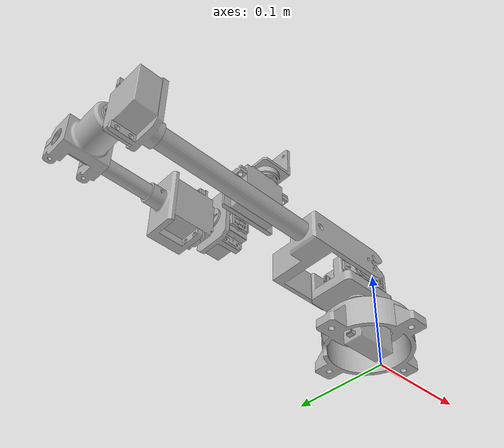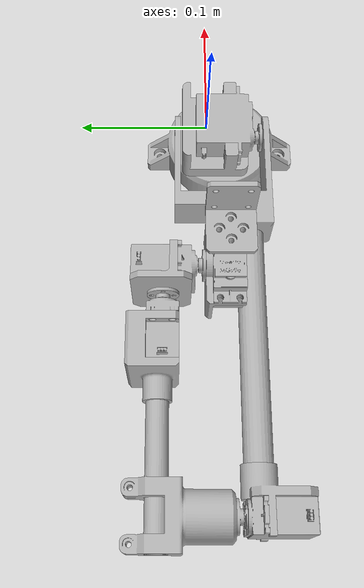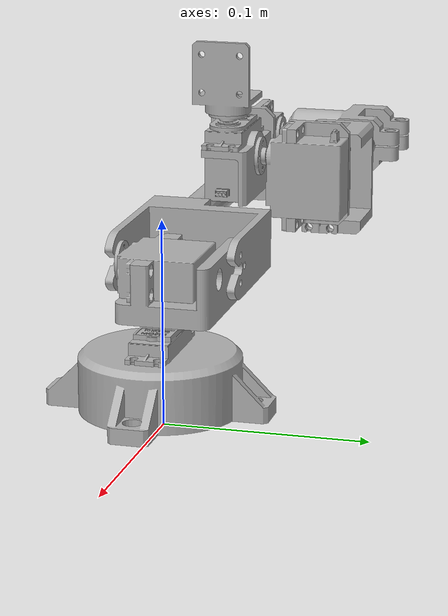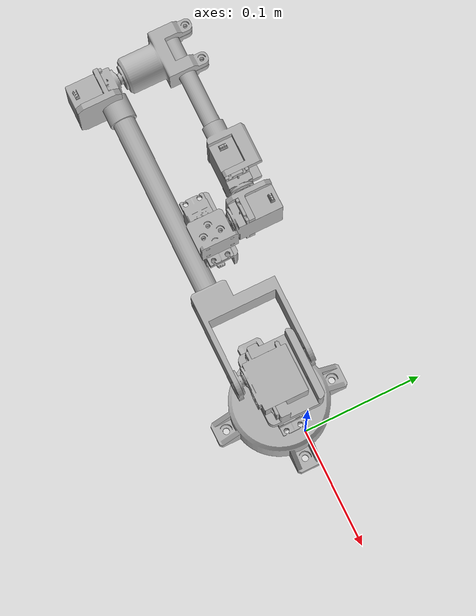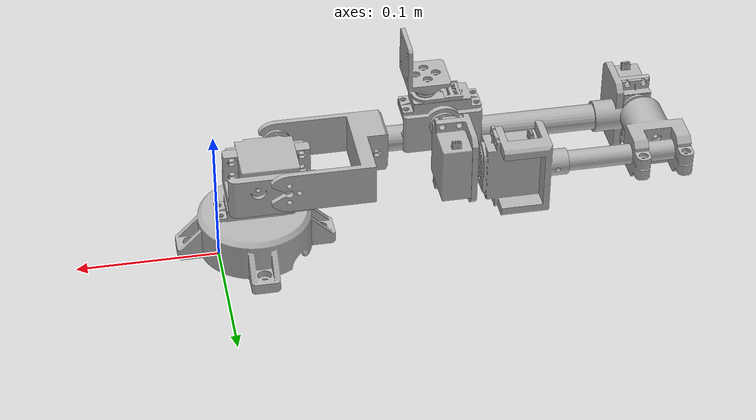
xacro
<?xml version="1.0" ?>
<robot name="PT-2" xmlns:xacro="http://www.ros.org/wiki/xacro">

<xacro:include filename="$(find PT-2_description)/urdf/materials.xacro" />
<xacro:include filename="$(find PT-2_description)/urdf/PT-2.trans" />
<xacro:include filename="$(find PT-2_description)/urdf/PT-2.gazebo" />
<link name="base_link">
  <inertial>
    <origin xyz="-0.027131778182013722 -0.009733860759561438 0.014001989342824386" rpy="0 0 0"/>
    <mass value="0.018537346732997912"/>
    <inertia ixx="1.6e-05" iyy="1.5e-05" izz="2.7e-05" ixy="-0.0" iyz="-0.0" ixz="0.0"/>
  </inertial>
  <visual>
    <origin xyz="0 0 0" rpy="0 0 0"/>
    <geometry>
      <mesh filename="package://PT-2_description/meshes/base_link.stl" scale="0.001 0.001 0.001"/>
    </geometry>
    <material name="silver"/>
  </visual>
  <collision>
    <origin xyz="0 0 0" rpy="0 0 0"/>
    <geometry>
      <mesh filename="package://PT-2_description/meshes/base_link.stl" scale="0.001 0.001 0.001"/>
    </geometry>
  </collision>
</link>

<link name="servo1_1">
  <inertial>
    <origin xyz="-0.024601724218867728 0.005874591954571153 -0.008916884410576413" rpy="0 0 0"/>
    <mass value="0.03217556547489919"/>
    <inertia ixx="5e-06" iyy="9e-06" izz="6e-06" ixy="-0.0" iyz="0.0" ixz="0.0"/>
  </inertial>
  <visual>
    <origin xyz="0.00293 0.015408 -0.028015" rpy="0 0 0"/>
    <geometry>
      <mesh filename="package://PT-2_description/meshes/servo1_1.stl" scale="0.001 0.001 0.001"/>
    </geometry>
    <material name="silver"/>
  </visual>
  <collision>
    <origin xyz="0.00293 0.015408 -0.028015" rpy="0 0 0"/>
    <geometry>
      <mesh filename="package://PT-2_description/meshes/servo1_1.stl" scale="0.001 0.001 0.001"/>
    </geometry>
  </collision>
</link>

<link name="servo_horn_v1_1">
  <inertial>
    <origin xyz="2.855842683446852e-07 -9.536126397233918e-07 -0.0003168703418373123" rpy="0 0 0"/>
    <mass value="0.0017252178816979493"/>
    <inertia ixx="0.0" iyy="0.0" izz="0.0" ixy="-0.0" iyz="0.0" ixz="-0.0"/>
  </inertial>
  <visual>
    <origin xyz="0.037508 0.009533 -0.044325" rpy="0 0 0"/>
    <geometry>
      <mesh filename="package://PT-2_description/meshes/servo_horn_v1_1.stl" scale="0.001 0.001 0.001"/>
    </geometry>
    <material name="silver"/>
  </visual>
  <collision>
    <origin xyz="0.037508 0.009533 -0.044325" rpy="0 0 0"/>
    <geometry>
      <mesh filename="package://PT-2_description/meshes/servo_horn_v1_1.stl" scale="0.001 0.001 0.001"/>
    </geometry>
  </collision>
</link>

<link name="link_1_1">
  <inertial>
    <origin xyz="-0.007082452611160375 0.008894973400524621 0.00877736981047849" rpy="0 0 0"/>
    <mass value="0.013445523750573762"/>
    <inertia ixx="4e-06" iyy="5e-06" izz="7e-06" ixy="0.0" iyz="-0.0" ixz="0.0"/>
  </inertial>
  <visual>
    <origin xyz="0.030508 0.009533 -0.045325" rpy="0 0 0"/>
    <geometry>
      <mesh filename="package://PT-2_description/meshes/link_1_1.stl" scale="0.001 0.001 0.001"/>
    </geometry>
    <material name="silver"/>
  </visual>
  <collision>
    <origin xyz="0.030508 0.009533 -0.045325" rpy="0 0 0"/>
    <geometry>
      <mesh filename="package://PT-2_description/meshes/link_1_1.stl" scale="0.001 0.001 0.001"/>
    </geometry>
  </collision>
</link>

<link name="servo2_1">
  <inertial>
    <origin xyz="-0.024601494627471847 0.008916310887469312 -0.00586972037018979" rpy="0 0 0"/>
    <mass value="0.03217556547489919"/>
    <inertia ixx="5e-06" iyy="6e-06" izz="9e-06" ixy="-0.0" iyz="-0.0" ixz="-0.0"/>
  </inertial>
  <visual>
    <origin xyz="0.013108 0.018538 -0.071199" rpy="0 0 0"/>
    <geometry>
      <mesh filename="package://PT-2_description/meshes/servo2_1.stl" scale="0.001 0.001 0.001"/>
    </geometry>
    <material name="silver"/>
  </visual>
  <collision>
    <origin xyz="0.013108 0.018538 -0.071199" rpy="0 0 0"/>
    <geometry>
      <mesh filename="package://PT-2_description/meshes/servo2_1.stl" scale="0.001 0.001 0.001"/>
    </geometry>
  </collision>
</link>

<link name="servo_horn_v1__1__1">
  <inertial>
    <origin xyz="5.151756642673977e-07 0.00031629681873018844 -2.659374006702686e-07" rpy="0 0 0"/>
    <mass value="0.0017252178816979493"/>
    <inertia ixx="0.0" iyy="0.0" izz="0.0" ixy="0.0" iyz="-0.0" ixz="-0.0"/>
  </inertial>
  <visual>
    <origin xyz="0.047686 0.034848 -0.065329" rpy="0 0 0"/>
    <geometry>
      <mesh filename="package://PT-2_description/meshes/servo_horn_v1__1__1.stl" scale="0.001 0.001 0.001"/>
    </geometry>
    <material name="silver"/>
  </visual>
  <collision>
    <origin xyz="0.047686 0.034848 -0.065329" rpy="0 0 0"/>
    <geometry>
      <mesh filename="package://PT-2_description/meshes/servo_horn_v1__1__1.stl" scale="0.001 0.001 0.001"/>
    </geometry>
  </collision>
</link>

<link name="link_2_1">
  <inertial>
    <origin xyz="-0.04075801081477781 0.024324125467075988 3.1058543883966117e-07" rpy="0 0 0"/>
    <mass value="0.015570832110198175"/>
    <inertia ixx="9e-06" iyy="8e-06" izz="1.5e-05" ixy="-1e-06" iyz="-0.0" ixz="-0.0"/>
  </inertial>
  <visual>
    <origin xyz="0.054686 0.035848 -0.065329" rpy="0 0 0"/>
    <geometry>
      <mesh filename="package://PT-2_description/meshes/link_2_1.stl" scale="0.001 0.001 0.001"/>
    </geometry>
    <material name="silver"/>
  </visual>
  <collision>
    <origin xyz="0.054686 0.035848 -0.065329" rpy="0 0 0"/>
    <geometry>
      <mesh filename="package://PT-2_description/meshes/link_2_1.stl" scale="0.001 0.001 0.001"/>
    </geometry>
  </collision>
</link>

<link name="link_3_1">
  <inertial>
    <origin xyz="-0.08999954081720796 -3.770897828957176e-07 3.105854562007737e-07" rpy="0 0 0"/>
    <mass value="0.026038399558895264"/>
    <inertia ixx="2e-06" iyy="7.1e-05" izz="7.1e-05" ixy="-0.0" iyz="0.0" ixz="0.0"/>
  </inertial>
  <visual>
    <origin xyz="0.107686 0.024848 -0.065329" rpy="0 0 0"/>
    <geometry>
      <mesh filename="package://PT-2_description/meshes/link_3_1.stl" scale="0.001 0.001 0.001"/>
    </geometry>
    <material name="silver"/>
  </visual>
  <collision>
    <origin xyz="0.107686 0.024848 -0.065329" rpy="0 0 0"/>
    <geometry>
      <mesh filename="package://PT-2_description/meshes/link_3_1.stl" scale="0.001 0.001 0.001"/>
    </geometry>
  </collision>
</link>

<link name="link_3_2_1">
  <inertial>
    <origin xyz="-0.001983339573878251 -0.009250564104101511 3.1058544604223304e-07" rpy="0 0 0"/>
    <mass value="0.004655156929618343"/>
    <inertia ixx="2e-06" iyy="1e-06" izz="1e-06" ixy="-0.0" iyz="0.0" ixz="-0.0"/>
  </inertial>
  <visual>
    <origin xyz="0.287686 0.024848 -0.065329" rpy="0 0 0"/>
    <geometry>
      <mesh filename="package://PT-2_description/meshes/link_3_2_1.stl" scale="0.001 0.001 0.001"/>
    </geometry>
    <material name="silver"/>
  </visual>
  <collision>
    <origin xyz="0.287686 0.024848 -0.065329" rpy="0 0 0"/>
    <geometry>
      <mesh filename="package://PT-2_description/meshes/link_3_2_1.stl" scale="0.001 0.001 0.001"/>
    </geometry>
  </collision>
</link>

<link name="servo3_1">
  <inertial>
    <origin xyz="-0.005874509861562127 -0.008917065067035136 -0.024197965195677476" rpy="0 0 0"/>
    <mass value="0.03217556547489919"/>
    <inertia ixx="9e-06" iyy="6e-06" izz="5e-06" ixy="-0.0" iyz="-0.0" ixz="-0.0"/>
  </inertial>
  <visual>
    <origin xyz="0.296811 0.026843 -0.089729" rpy="0 0 0"/>
    <geometry>
      <mesh filename="package://PT-2_description/meshes/servo3_1.stl" scale="0.001 0.001 0.001"/>
    </geometry>
    <material name="silver"/>
  </visual>
  <collision>
    <origin xyz="0.296811 0.026843 -0.089729" rpy="0 0 0"/>
    <geometry>
      <mesh filename="package://PT-2_description/meshes/servo3_1.stl" scale="0.001 0.001 0.001"/>
    </geometry>
  </collision>
</link>

<link name="servo_horn_v1__2__1">
  <inertial>
    <origin xyz="5.151756642951533e-07 -0.00031705099829608917 6.575169154698912e-07" rpy="0 0 0"/>
    <mass value="0.0017252178816979493"/>
    <inertia ixx="0.0" iyy="0.0" izz="0.0" ixy="-0.0" iyz="-0.0" ixz="0.0"/>
  </inertial>
  <visual>
    <origin xyz="0.302686 0.010533 -0.075507" rpy="0 0 0"/>
    <geometry>
      <mesh filename="package://PT-2_description/meshes/servo_horn_v1__2__1.stl" scale="0.001 0.001 0.001"/>
    </geometry>
    <material name="silver"/>
  </visual>
  <collision>
    <origin xyz="0.302686 0.010533 -0.075507" rpy="0 0 0"/>
    <geometry>
      <mesh filename="package://PT-2_description/meshes/servo_horn_v1__2__1.stl" scale="0.001 0.001 0.001"/>
    </geometry>
  </collision>
</link>

<link name="link_4_1">
  <inertial>
    <origin xyz="2.7601311473501866e-05 0.028342884401498736 -0.0070231248633810806" rpy="0 0 0"/>
    <mass value="0.013894154324210883"/>
    <inertia ixx="5e-06" iyy="3e-06" izz="5e-06" ixy="0.0" iyz="0.0" ixz="-0.0"/>
  </inertial>
  <visual>
    <origin xyz="0.302686 0.009533 -0.082507" rpy="0 0 0"/>
    <geometry>
      <mesh filename="package://PT-2_description/meshes/link_4_1.stl" scale="0.001 0.001 0.001"/>
    </geometry>
    <material name="silver"/>
  </visual>
  <collision>
    <origin xyz="0.302686 0.009533 -0.082507" rpy="0 0 0"/>
    <geometry>
      <mesh filename="package://PT-2_description/meshes/link_4_1.stl" scale="0.001 0.001 0.001"/>
    </geometry>
  </collision>
</link>

<link name="rod_02_v1_1">
  <inertial>
    <origin xyz="0.05000045918279156 -3.7708978290612594e-07 8.099405889028244e-08" rpy="0 0 0"/>
    <mass value="0.005840220743023432"/>
    <inertia ixx="0.0" iyy="5e-06" izz="5e-06" ixy="0.0" iyz="0.0" ixz="0.0"/>
  </inertial>
  <visual>
    <origin xyz="0.322686 -0.035467 -0.075507" rpy="0 0 0"/>
    <geometry>
      <mesh filename="package://PT-2_description/meshes/rod_02_v1_1.stl" scale="0.001 0.001 0.001"/>
    </geometry>
    <material name="silver"/>
  </visual>
  <collision>
    <origin xyz="0.322686 -0.035467 -0.075507" rpy="0 0 0"/>
    <geometry>
      <mesh filename="package://PT-2_description/meshes/rod_02_v1_1.stl" scale="0.001 0.001 0.001"/>
    </geometry>
  </collision>
</link>

<link name="link_5_1">
  <inertial>
    <origin xyz="0.008606495324546382 0.0052748319854056674 8.24990067649356e-08" rpy="0 0 0"/>
    <mass value="0.005673941122982631"/>
    <inertia ixx="2e-06" iyy="3e-06" izz="1e-06" ixy="-0.0" iyz="0.0" ixz="0.0"/>
  </inertial>
  <visual>
    <origin xyz="0.222686 -0.035467 -0.075507" rpy="0 0 0"/>
    <geometry>
      <mesh filename="package://PT-2_description/meshes/link_5_1.stl" scale="0.001 0.001 0.001"/>
    </geometry>
    <material name="silver"/>
  </visual>
  <collision>
    <origin xyz="0.222686 -0.035467 -0.075507" rpy="0 0 0"/>
    <geometry>
      <mesh filename="package://PT-2_description/meshes/link_5_1.stl" scale="0.001 0.001 0.001"/>
    </geometry>
  </collision>
</link>

<link name="servo4_1">
  <inertial>
    <origin xyz="-0.008916228794460246 0.005874591954570116 -0.024198194787073232" rpy="0 0 0"/>
    <mass value="0.03217556547489919"/>
    <inertia ixx="6e-06" iyy="9e-06" izz="5e-06" ixy="0.0" iyz="0.0" ixz="-0.0"/>
  </inertial>
  <visual>
    <origin xyz="0.189066 -0.026642 -0.099907" rpy="0 0 0"/>
    <geometry>
      <mesh filename="package://PT-2_description/meshes/servo4_1.stl" scale="0.001 0.001 0.001"/>
    </geometry>
    <material name="silver"/>
  </visual>
  <collision>
    <origin xyz="0.189066 -0.026642 -0.099907" rpy="0 0 0"/>
    <geometry>
      <mesh filename="package://PT-2_description/meshes/servo4_1.stl" scale="0.001 0.001 0.001"/>
    </geometry>
  </collision>
</link>

<link name="servo_horn_v1__3__1">
  <inertial>
    <origin xyz="-0.0003162147257211312 -9.536126406375911e-07 -2.045902093017471e-07" rpy="0 0 0"/>
    <mass value="0.0017252178816979493"/>
    <inertia ixx="0.0" iyy="0.0" izz="0.0" ixy="0.0" iyz="0.0" ixz="0.0"/>
  </inertial>
  <visual>
    <origin xyz="0.172756 -0.032517 -0.085685" rpy="0 0 0"/>
    <geometry>
      <mesh filename="package://PT-2_description/meshes/servo_horn_v1__3__1.stl" scale="0.001 0.001 0.001"/>
    </geometry>
    <material name="silver"/>
  </visual>
  <collision>
    <origin xyz="0.172756 -0.032517 -0.085685" rpy="0 0 0"/>
    <geometry>
      <mesh filename="package://PT-2_description/meshes/servo_horn_v1__3__1.stl" scale="0.001 0.001 0.001"/>
    </geometry>
  </collision>
</link>

<link name="link_6_1">
  <inertial>
    <origin xyz="0.0035034589457641485 8.661795096664981e-05 -0.007000148597336928" rpy="0 0 0"/>
    <mass value="0.0030789946205401243"/>
    <inertia ixx="1e-06" iyy="1e-06" izz="0.0" ixy="0.0" iyz="0.0" ixz="-0.0"/>
  </inertial>
  <visual>
    <origin xyz="0.171756 -0.032517 -0.092685" rpy="0 0 0"/>
    <geometry>
      <mesh filename="package://PT-2_description/meshes/link_6_1.stl" scale="0.001 0.001 0.001"/>
    </geometry>
    <material name="silver"/>
  </visual>
  <collision>
    <origin xyz="0.171756 -0.032517 -0.092685" rpy="0 0 0"/>
    <geometry>
      <mesh filename="package://PT-2_description/meshes/link_6_1.stl" scale="0.001 0.001 0.001"/>
    </geometry>
  </collision>
</link>

<link name="servo5_1">
  <inertial>
    <origin xyz="-0.005869571772854049 0.008916310887468488 -0.024198424378469155" rpy="0 0 0"/>
    <mass value="0.03217556547489919"/>
    <inertia ixx="9e-06" iyy="6e-06" izz="5e-06" ixy="-0.0" iyz="0.0" ixz="0.0"/>
  </inertial>
  <visual>
    <origin xyz="0.151886 -0.023512 -0.110085" rpy="0 0 0"/>
    <geometry>
      <mesh filename="package://PT-2_description/meshes/servo5_1.stl" scale="0.001 0.001 0.001"/>
    </geometry>
    <material name="silver"/>
  </visual>
  <collision>
    <origin xyz="0.151886 -0.023512 -0.110085" rpy="0 0 0"/>
    <geometry>
      <mesh filename="package://PT-2_description/meshes/servo5_1.stl" scale="0.001 0.001 0.001"/>
    </geometry>
  </collision>
</link>

<link name="servo_horn_v1__4__1">
  <inertial>
    <origin xyz="5.151756642673977e-07 0.000316296818729315 -9.547115899372072e-07" rpy="0 0 0"/>
    <mass value="0.0017252178816979493"/>
    <inertia ixx="0.0" iyy="0.0" izz="0.0" ixy="0.0" iyz="-0.0" ixz="-0.0"/>
  </inertial>
  <visual>
    <origin xyz="0.157756 -0.007202 -0.095863" rpy="0 0 0"/>
    <geometry>
      <mesh filename="package://PT-2_description/meshes/servo_horn_v1__4__1.stl" scale="0.001 0.001 0.001"/>
    </geometry>
    <material name="silver"/>
  </visual>
  <collision>
    <origin xyz="0.157756 -0.007202 -0.095863" rpy="0 0 0"/>
    <geometry>
      <mesh filename="package://PT-2_description/meshes/servo_horn_v1__4__1.stl" scale="0.001 0.001 0.001"/>
    </geometry>
  </collision>
</link>

<link name="link_7_1">
  <inertial>
    <origin xyz="4.5918279345524837e-07 -0.0035212546622750093 -0.011783949969478943" rpy="0 0 0"/>
    <mass value="0.0024697393548202117"/>
    <inertia ixx="0.0" iyy="1e-06" izz="1e-06" ixy="-0.0" iyz="0.0" ixz="0.0"/>
  </inertial>
  <visual>
    <origin xyz="0.157756 -0.006202 -0.102863" rpy="0 0 0"/>
    <geometry>
      <mesh filename="package://PT-2_description/meshes/link_7_1.stl" scale="0.001 0.001 0.001"/>
    </geometry>
    <material name="silver"/>
  </visual>
  <collision>
    <origin xyz="0.157756 -0.006202 -0.102863" rpy="0 0 0"/>
    <geometry>
      <mesh filename="package://PT-2_description/meshes/link_7_1.stl" scale="0.001 0.001 0.001"/>
    </geometry>
  </collision>
</link>

<link name="servo6_1">
  <inertial>
    <origin xyz="-0.0241978165983405 0.0058696538658621275 -0.008917066165985338" rpy="0 0 0"/>
    <mass value="0.03217556547489919"/>
    <inertia ixx="5e-06" iyy="9e-06" izz="6e-06" ixy="-0.0" iyz="-0.0" ixz="-0.0"/>
  </inertial>
  <visual>
    <origin xyz="0.133356 0.013668 -0.103483" rpy="0 0 0"/>
    <geometry>
      <mesh filename="package://PT-2_description/meshes/servo6_1.stl" scale="0.001 0.001 0.001"/>
    </geometry>
    <material name="silver"/>
  </visual>
  <collision>
    <origin xyz="0.133356 0.013668 -0.103483" rpy="0 0 0"/>
    <geometry>
      <mesh filename="package://PT-2_description/meshes/servo6_1.stl" scale="0.001 0.001 0.001"/>
    </geometry>
  </collision>
</link>

<link name="servo_horn_v1__5__1">
  <inertial>
    <origin xyz="2.855842682336629e-07 -9.536126408249412e-07 -0.0003170520972461677" rpy="0 0 0"/>
    <mass value="0.0017252178816979493"/>
    <inertia ixx="0.0" iyy="0.0" izz="0.0" ixy="-0.0" iyz="0.0" ixz="-0.0"/>
  </inertial>
  <visual>
    <origin xyz="0.147578 0.007798 -0.119793" rpy="0 0 0"/>
    <geometry>
      <mesh filename="package://PT-2_description/meshes/servo_horn_v1__5__1.stl" scale="0.001 0.001 0.001"/>
    </geometry>
    <material name="silver"/>
  </visual>
  <collision>
    <origin xyz="0.147578 0.007798 -0.119793" rpy="0 0 0"/>
    <geometry>
      <mesh filename="package://PT-2_description/meshes/servo_horn_v1__5__1.stl" scale="0.001 0.001 0.001"/>
    </geometry>
  </collision>
</link>

<link name="tool-01_v1_1">
  <inertial>
    <origin xyz="-0.0022016268328944044 -1.0036474157997313e-05 0.011860327228265674" rpy="0 0 0"/>
    <mass value="0.00259877806362243"/>
    <inertia ixx="0.0" iyy="0.0" izz="0.0" ixy="-0.0" iyz="-0.0" ixz="-0.0"/>
  </inertial>
  <visual>
    <origin xyz="0.140578 0.007798 -0.120793" rpy="0 0 0"/>
    <geometry>
      <mesh filename="package://PT-2_description/meshes/tool-01_v1_1.stl" scale="0.001 0.001 0.001"/>
    </geometry>
    <material name="silver"/>
  </visual>
  <collision>
    <origin xyz="0.140578 0.007798 -0.120793" rpy="0 0 0"/>
    <geometry>
      <mesh filename="package://PT-2_description/meshes/tool-01_v1_1.stl" scale="0.001 0.001 0.001"/>
    </geometry>
  </collision>
</link>

<joint name="Rigid1" type="fixed">
  <origin xyz="-0.00293 -0.015408 0.028015" rpy="0 0 0"/>
  <parent link="base_link"/>
  <child link="servo1_1"/>
</joint>

<joint name="Rev2" type="revolute">
  <origin xyz="-0.034578 0.005875 0.01631" rpy="0 0 0"/>
  <parent link="servo1_1"/>
  <child link="servo_horn_v1_1"/>
  <axis xyz="-0.0 -0.0 1.0"/>
  <limit upper="6.283185" lower="0.0" effort="100" velocity="100"/>
</joint>

<joint name="Rigid3" type="fixed">
  <origin xyz="0.007 0.0 0.001" rpy="0 0 0"/>
  <parent link="servo_horn_v1_1"/>
  <child link="link_1_1"/>
</joint>

<joint name="Rigid4" type="fixed">
  <origin xyz="0.0174 -0.009005 0.025874" rpy="0 0 0"/>
  <parent link="link_1_1"/>
  <child link="servo2_1"/>
</joint>

<joint name="Rev5" type="revolute">
  <origin xyz="-0.034578 -0.01631 -0.00587" rpy="0 0 0"/>
  <parent link="servo2_1"/>
  <child link="servo_horn_v1__1__1"/>
  <axis xyz="0.0 -1.0 -0.0"/>
  <limit upper="1.570796" lower="-1.570796" effort="100" velocity="100"/>
</joint>

<joint name="Rigid6" type="fixed">
  <origin xyz="-0.007 -0.001 0.0" rpy="0 0 0"/>
  <parent link="servo_horn_v1__1__1"/>
  <child link="link_2_1"/>
</joint>

<joint name="Rigid7" type="fixed">
  <origin xyz="-0.053 0.011 0.0" rpy="0 0 0"/>
  <parent link="link_2_1"/>
  <child link="link_3_1"/>
</joint>

<joint name="Rigid8" type="fixed">
  <origin xyz="-0.18 0.0 0.0" rpy="0 0 0"/>
  <parent link="link_3_1"/>
  <child link="link_3_2_1"/>
</joint>

<joint name="Rigid9" type="fixed">
  <origin xyz="-0.009125 -0.001995 0.0244" rpy="0 0 0"/>
  <parent link="link_3_2_1"/>
  <child link="servo3_1"/>
</joint>

<joint name="Rev10" type="revolute">
  <origin xyz="-0.005875 0.01631 -0.014222" rpy="0 0 0"/>
  <parent link="servo3_1"/>
  <child link="servo_horn_v1__2__1"/>
  <axis xyz="-0.0 1.0 0.0"/>
  <limit upper="3.141593" lower="0.0" effort="100" velocity="100"/>
</joint>

<joint name="Rigid11" type="fixed">
  <origin xyz="0.0 0.001 0.007" rpy="0 0 0"/>
  <parent link="servo_horn_v1__2__1"/>
  <child link="link_4_1"/>
</joint>

<joint name="Rigid12" type="fixed">
  <origin xyz="-0.02 0.045 -0.007" rpy="0 0 0"/>
  <parent link="link_4_1"/>
  <child link="rod_02_v1_1"/>
</joint>

<joint name="Rigid13" type="fixed">
  <origin xyz="0.1 0.0 0.0" rpy="0 0 0"/>
  <parent link="rod_02_v1_1"/>
  <child link="link_5_1"/>
</joint>

<joint name="Rigid14" type="fixed">
  <origin xyz="0.03362 -0.008825 0.0244" rpy="0 0 0"/>
  <parent link="link_5_1"/>
  <child link="servo4_1"/>
</joint>

<joint name="Rev15" type="revolute">
  <origin xyz="0.01631 0.005875 -0.014222" rpy="0 0 0"/>
  <parent link="servo4_1"/>
  <child link="servo_horn_v1__3__1"/>
  <axis xyz="1.0 0.0 0.0"/>
  <limit upper="3.141593" lower="0.0" effort="100" velocity="100"/>
</joint>

<joint name="Rigid17" type="fixed">
  <origin xyz="0.001 0.0 0.007" rpy="0 0 0"/>
  <parent link="servo_horn_v1__3__1"/>
  <child link="link_6_1"/>
</joint>

<joint name="Rigid18" type="fixed">
  <origin xyz="0.01987 -0.009005 0.0174" rpy="0 0 0"/>
  <parent link="link_6_1"/>
  <child link="servo5_1"/>
</joint>

<joint name="Rev19" type="revolute">
  <origin xyz="-0.00587 -0.01631 -0.014222" rpy="0 0 0"/>
  <parent link="servo5_1"/>
  <child link="servo_horn_v1__4__1"/>
  <axis xyz="0.0 -1.0 -0.0"/>
  <limit upper="3.141593" lower="0.0" effort="100" velocity="100"/>
</joint>

<joint name="Rigid20" type="fixed">
  <origin xyz="0.0 -0.001 0.007" rpy="0 0 0"/>
  <parent link="servo_horn_v1__4__1"/>
  <child link="link_7_1"/>
</joint>

<joint name="Rigid21" type="fixed">
  <origin xyz="0.0244 -0.01987 0.00062" rpy="0 0 0"/>
  <parent link="link_7_1"/>
  <child link="servo6_1"/>
</joint>

<joint name="Rev22" type="revolute">
  <origin xyz="-0.014222 0.00587 0.01631" rpy="0 0 0"/>
  <parent link="servo6_1"/>
  <child link="servo_horn_v1__5__1"/>
  <axis xyz="0.0 -0.0 1.0"/>
  <limit upper="3.141593" lower="0.0" effort="100" velocity="100"/>
</joint>

<joint name="Rigid23" type="fixed">
  <origin xyz="0.007 0.0 0.001" rpy="0 0 0"/>
  <parent link="servo_horn_v1__5__1"/>
  <child link="tool-01_v1_1"/>
</joint>

</robot>

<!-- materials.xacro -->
<robot name="PT-2" xmlns:xacro="http://www.ros.org/wiki/xacro" >

<material name="silver">
  <color rgba="0.700 0.700 0.700 1.000"/>
</material>

</robot>

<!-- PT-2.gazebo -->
<robot name="PT-2" xmlns:xacro="http://www.ros.org/wiki/xacro" >

<xacro:property name="body_color" value="Gazebo/Silver" />

<gazebo>
  <plugin name="control" filename="libgazebo_ros_control.so"/>
</gazebo>
<gazebo reference="base_link">
  <material>${body_color}</material>
  <mu1>0.2</mu1>
  <mu2>0.2</mu2>
  <selfCollide>true</selfCollide>
  <gravity>true</gravity>
</gazebo>

<gazebo reference="servo1_1">
  <material>${body_color}</material>
  <mu1>0.2</mu1>
  <mu2>0.2</mu2>
  <selfCollide>true</selfCollide>
</gazebo>

<gazebo reference="servo_horn_v1_1">
  <material>${body_color}</material>
  <mu1>0.2</mu1>
  <mu2>0.2</mu2>
  <selfCollide>true</selfCollide>
</gazebo>

<gazebo reference="link_1_1">
  <material>${body_color}</material>
  <mu1>0.2</mu1>
  <mu2>0.2</mu2>
  <selfCollide>true</selfCollide>
</gazebo>

<gazebo reference="servo2_1">
  <material>${body_color}</material>
  <mu1>0.2</mu1>
  <mu2>0.2</mu2>
  <selfCollide>true</selfCollide>
</gazebo>

<gazebo reference="servo_horn_v1__1__1">
  <material>${body_color}</material>
  <mu1>0.2</mu1>
  <mu2>0.2</mu2>
  <selfCollide>true</selfCollide>
</gazebo>

<gazebo reference="link_2_1">
  <material>${body_color}</material>
  <mu1>0.2</mu1>
  <mu2>0.2</mu2>
  <selfCollide>true</selfCollide>
</gazebo>

<gazebo reference="link_3_1">
  <material>${body_color}</material>
  <mu1>0.2</mu1>
  <mu2>0.2</mu2>
  <selfCollide>true</selfCollide>
</gazebo>

<gazebo reference="link_3_2_1">
  <material>${body_color}</material>
  <mu1>0.2</mu1>
  <mu2>0.2</mu2>
  <selfCollide>true</selfCollide>
</gazebo>

<gazebo reference="servo3_1">
  <material>${body_color}</material>
  <mu1>0.2</mu1>
  <mu2>0.2</mu2>
  <selfCollide>true</selfCollide>
</gazebo>

<gazebo reference="servo_horn_v1__2__1">
  <material>${body_color}</material>
  <mu1>0.2</mu1>
  <mu2>0.2</mu2>
  <selfCollide>true</selfCollide>
</gazebo>

<gazebo reference="link_4_1">
  <material>${body_color}</material>
  <mu1>0.2</mu1>
  <mu2>0.2</mu2>
  <selfCollide>true</selfCollide>
</gazebo>

<gazebo reference="rod_02_v1_1">
  <material>${body_color}</material>
  <mu1>0.2</mu1>
  <mu2>0.2</mu2>
  <selfCollide>true</selfCollide>
</gazebo>

<gazebo reference="link_5_1">
  <material>${body_color}</material>
  <mu1>0.2</mu1>
  <mu2>0.2</mu2>
  <selfCollide>true</selfCollide>
</gazebo>

<gazebo reference="servo4_1">
  <material>${body_color}</material>
  <mu1>0.2</mu1>
  <mu2>0.2</mu2>
  <selfCollide>true</selfCollide>
</gazebo>

<gazebo reference="servo_horn_v1__3__1">
  <material>${body_color}</material>
  <mu1>0.2</mu1>
  <mu2>0.2</mu2>
  <selfCollide>true</selfCollide>
</gazebo>

<gazebo reference="link_6_1">
  <material>${body_color}</material>
  <mu1>0.2</mu1>
  <mu2>0.2</mu2>
  <selfCollide>true</selfCollide>
</gazebo>

<gazebo reference="servo5_1">
  <material>${body_color}</material>
  <mu1>0.2</mu1>
  <mu2>0.2</mu2>
  <selfCollide>true</selfCollide>
</gazebo>

<gazebo reference="servo_horn_v1__4__1">
  <material>${body_color}</material>
  <mu1>0.2</mu1>
  <mu2>0.2</mu2>
  <selfCollide>true</selfCollide>
</gazebo>

<gazebo reference="link_7_1">
  <material>${body_color}</material>
  <mu1>0.2</mu1>
  <mu2>0.2</mu2>
  <selfCollide>true</selfCollide>
</gazebo>

<gazebo reference="servo6_1">
  <material>${body_color}</material>
  <mu1>0.2</mu1>
  <mu2>0.2</mu2>
  <selfCollide>true</selfCollide>
</gazebo>

<gazebo reference="servo_horn_v1__5__1">
  <material>${body_color}</material>
  <mu1>0.2</mu1>
  <mu2>0.2</mu2>
  <selfCollide>true</selfCollide>
</gazebo>

<gazebo reference="tool-01_v1_1">
  <material>${body_color}</material>
  <mu1>0.2</mu1>
  <mu2>0.2</mu2>
  <selfCollide>true</selfCollide>
</gazebo>

</robot>
